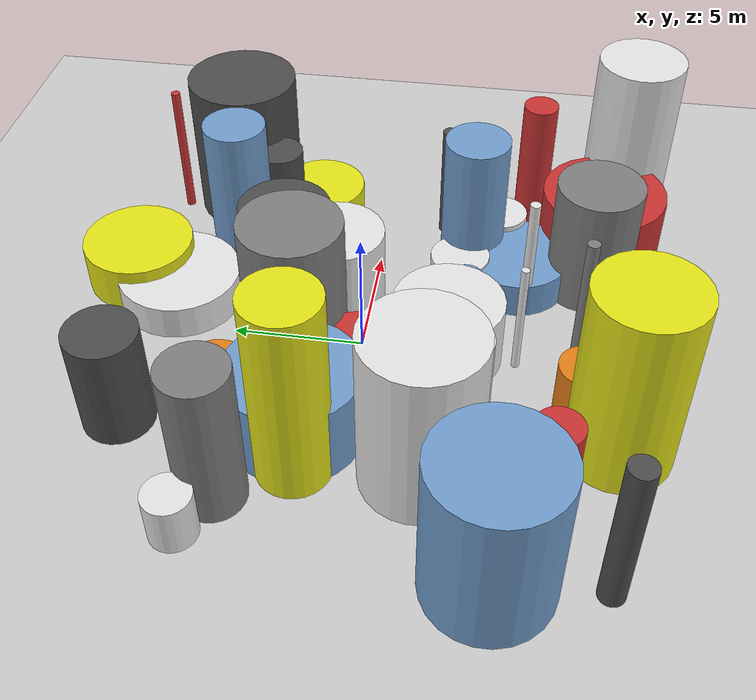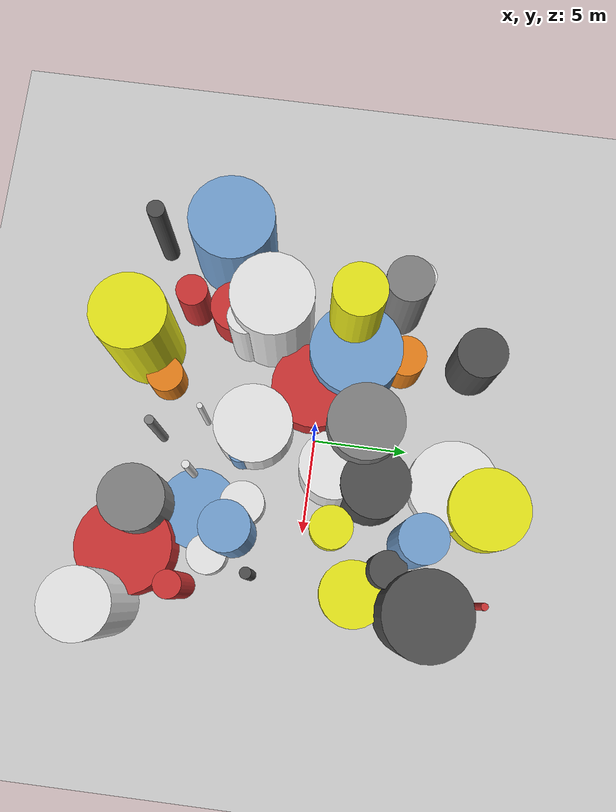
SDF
<?xml version='1.0'?>
<sdf version='1.6'>
  <world name='default'>
    <!-- Sun light -->
    <light name='sun' type='directional'>
      <cast_shadows>1</cast_shadows>
      <pose>0 0 10 0 0 0</pose>
      <diffuse>0.8 0.8 0.8 1</diffuse>
      <specular>0.2 0.2 0.2 1</specular>
      <attenuation>
        <range>1000</range>
        <constant>0.9</constant>
        <linear>0.01</linear>
        <quadratic>0.001</quadratic>
      </attenuation>
      <direction>-0.5 0.1 -0.9</direction>
    </light>

    <!-- Ground plane -->
    <model name='ground_plane'>
      <static>1</static>
      <link name='link'>
        <collision name='collision'>
          <geometry>
            <plane>
              <normal>0 0 1</normal>
              <size>100 100</size>
            </plane>
          </geometry>
          <surface>
            <contact>
              <collide_bitmask>65535</collide_bitmask>
              <ode/>
            </contact>
            <friction>
              <ode>
                <mu>100</mu>
                <mu2>50</mu2>
              </ode>
              <torsional><ode/></torsional>
            </friction>
            <bounce/>
          </surface>
          <max_contacts>10</max_contacts>
        </collision>
        <visual name='visual'>
          <cast_shadows>0</cast_shadows>
          <geometry>
            <plane>
              <normal>0 0 1</normal>
              <size>100 100</size>
            </plane>
          </geometry>
          <material>
            <script>
              <uri>file://media/materials/scripts/gazebo.material</uri>
              <n>Gazebo/Grey</n>
            </script>
          </material>
        </visual>
      </link>
    </model>

    <!-- Environment -->
    <magnetic_field>6e-06 2.3e-05 -4.2e-05</magnetic_field>
    <atmosphere type='adiabatic'/>
    <physics name='default_physics' default='0' type='ode'>
      <gravity>0 0 -9.8</gravity>
      <max_step_size>0.004</max_step_size>
      <real_time_factor>1</real_time_factor>
      <real_time_update_rate>250</real_time_update_rate>
    </physics>
    <scene>
      <ambient>0.4 0.4 0.4 1</ambient>
      <background>0.7 0.7 0.7 1</background>
      <shadows>1</shadows>
    </scene>
    <wind/>
    <spherical_coordinates>
      <surface_model>EARTH_WGS84</surface_model>
      <latitude_deg>0</latitude_deg>
      <longitude_deg>0</longitude_deg>
      <elevation>0</elevation>
      <heading_deg>0</heading_deg>
    </spherical_coordinates>

    <!-- ============ OBSTACLES (41) ============ -->
    <model name='obs_00'>
      <static>1</static>
      <link name='link'>
        <visual name='visual'>
          <geometry>
            <cylinder>
              <radius>0.2033</radius>
              <length>5.2297</length>
            </cylinder>
          </geometry>
          <material>
            <script>
              <n>Gazebo/White</n>
              <uri>file://media/materials/scripts/gazebo.material</uri>
            </script>
            <ambient>0.9 0.9 0.9 1</ambient>
          </material>
        </visual>
        <collision name='collision'>
          <geometry>
            <cylinder>
              <radius>0.2033</radius>
              <length>5.2297</length>
            </cylinder>
          </geometry>
          <max_contacts>10</max_contacts>
          <surface>
            <contact><ode/></contact>
            <bounce/>
            <friction>
              <ode><mu>1</mu><mu2>1</mu2></ode>
              <torsional><ode/></torsional>
            </friction>
          </surface>
        </collision>
      </link>
      <pose>2.7827 -6.0167 2.6148 0 0 2.5821</pose>
    </model>

    <model name='obs_01'>
      <static>1</static>
      <link name='link'>
        <visual name='visual'>
          <geometry>
            <cylinder>
              <radius>1.2286</radius>
              <length>6.1589</length>
            </cylinder>
          </geometry>
          <material>
            <script>
              <n>Gazebo/Blue</n>
              <uri>file://media/materials/scripts/gazebo.material</uri>
            </script>
            <ambient>0.447 0.624 0.812 1</ambient>
          </material>
        </visual>
        <collision name='collision'>
          <geometry>
            <cylinder>
              <radius>1.2286</radius>
              <length>6.1589</length>
            </cylinder>
          </geometry>
          <max_contacts>10</max_contacts>
          <surface>
            <contact><ode/></contact>
            <bounce/>
            <friction>
              <ode><mu>1</mu><mu2>1</mu2></ode>
              <torsional><ode/></torsional>
            </friction>
          </surface>
        </collision>
      </link>
      <pose>4.9687 5.7534 3.0794 0 0 0.5555</pose>
    </model>

    <model name='obs_02'>
      <static>1</static>
      <link name='link'>
        <visual name='visual'>
          <geometry>
            <cylinder>
              <radius>0.8533</radius>
              <length>1.9529</length>
            </cylinder>
          </geometry>
          <material>
            <script>
              <n>Gazebo/White</n>
              <uri>file://media/materials/scripts/gazebo.material</uri>
            </script>
            <ambient>0.9 0.9 0.9 1</ambient>
          </material>
        </visual>
        <collision name='collision'>
          <geometry>
            <cylinder>
              <radius>0.8533</radius>
              <length>1.9529</length>
            </cylinder>
          </geometry>
          <max_contacts>10</max_contacts>
          <surface>
            <contact><ode/></contact>
            <bounce/>
            <friction>
              <ode><mu>1</mu><mu2>1</mu2></ode>
              <torsional><ode/></torsional>
            </friction>
          </surface>
        </collision>
      </link>
      <pose>-9.3894 4.6577 0.9765 0 0 1.5362</pose>
    </model>

    <model name='obs_03'>
      <static>1</static>
      <link name='link'>
        <visual name='visual'>
          <geometry>
            <cylinder>
              <radius>1.7557</radius>
              <length>1.5723</length>
            </cylinder>
          </geometry>
          <material>
            <script>
              <n>Gazebo/Yellow</n>
              <uri>file://media/materials/scripts/gazebo.material</uri>
            </script>
            <ambient>0.9 0.9 0.1 1</ambient>
          </material>
        </visual>
        <collision name='collision'>
          <geometry>
            <cylinder>
              <radius>1.7557</radius>
              <length>1.5723</length>
            </cylinder>
          </geometry>
          <max_contacts>10</max_contacts>
          <surface>
            <contact><ode/></contact>
            <bounce/>
            <friction>
              <ode><mu>1</mu><mu2>1</mu2></ode>
              <torsional><ode/></torsional>
            </friction>
          </surface>
        </collision>
      </link>
      <pose>7.8879 2.9572 0.7861 0 0 2.3073</pose>
    </model>

    <model name='obs_04'>
      <static>1</static>
      <link name='link'>
        <visual name='visual'>
          <geometry>
            <cylinder>
              <radius>2.0811</radius>
              <length>2.7573</length>
            </cylinder>
          </geometry>
          <material>
            <script>
              <n>Gazebo/White</n>
              <uri>file://media/materials/scripts/gazebo.material</uri>
            </script>
            <ambient>0.9 0.9 0.9 1</ambient>
          </material>
        </visual>
        <collision name='collision'>
          <geometry>
            <cylinder>
              <radius>2.0811</radius>
              <length>2.7573</length>
            </cylinder>
          </geometry>
          <max_contacts>10</max_contacts>
          <surface>
            <contact><ode/></contact>
            <bounce/>
            <friction>
              <ode><mu>1</mu><mu2>1</mu2></ode>
              <torsional><ode/></torsional>
            </friction>
          </surface>
        </collision>
      </link>
      <pose>-0.1002 -3.2435 1.3787 0 0 1.9395</pose>
    </model>

    <model name='obs_05'>
      <static>1</static>
      <link name='link'>
        <visual name='visual'>
          <geometry>
            <cylinder>
              <radius>2.1134</radius>
              <length>1.4593</length>
            </cylinder>
          </geometry>
          <material>
            <script>
              <n>Gazebo/Blue</n>
              <uri>file://media/materials/scripts/gazebo.material</uri>
            </script>
            <ambient>0.447 0.624 0.812 1</ambient>
          </material>
        </visual>
        <collision name='collision'>
          <geometry>
            <cylinder>
              <radius>2.1134</radius>
              <length>1.4593</length>
            </cylinder>
          </geometry>
          <max_contacts>10</max_contacts>
          <surface>
            <contact><ode/></contact>
            <bounce/>
            <friction>
              <ode><mu>1</mu><mu2>1</mu2></ode>
              <torsional><ode/></torsional>
            </friction>
          </surface>
        </collision>
      </link>
      <pose>4.5429 -5.5545 0.7297 0 0 1.1145</pose>
    </model>

    <model name='obs_06'>
      <static>1</static>
      <link name='link'>
        <visual name='visual'>
          <geometry>
            <cylinder>
              <radius>0.9795</radius>
              <length>2.2826</length>
            </cylinder>
          </geometry>
          <material>
            <script>
              <n>Gazebo/Orange</n>
              <uri>file://media/materials/scripts/gazebo.material</uri>
            </script>
            <ambient>0.9 0.5 0.1 1</ambient>
          </material>
        </visual>
        <collision name='collision'>
          <geometry>
            <cylinder>
              <radius>0.9795</radius>
              <length>2.2826</length>
            </cylinder>
          </geometry>
          <max_contacts>10</max_contacts>
          <surface>
            <contact><ode/></contact>
            <bounce/>
            <friction>
              <ode><mu>1</mu><mu2>1</mu2></ode>
              <torsional><ode/></torsional>
            </friction>
          </surface>
        </collision>
      </link>
      <pose>-2.2203 -8.2411 1.1413 0 0 1.3497</pose>
    </model>

    <model name='obs_07'>
      <static>1</static>
      <link name='link'>
        <visual name='visual'>
          <geometry>
            <cylinder>
              <radius>1.7584</radius>
              <length>4.0465</length>
            </cylinder>
          </geometry>
          <material>
            <script>
              <n>Gazebo/White</n>
              <uri>file://media/materials/scripts/gazebo.material</uri>
            </script>
            <ambient>0.9 0.9 0.9 1</ambient>
          </material>
        </visual>
        <collision name='collision'>
          <geometry>
            <cylinder>
              <radius>1.7584</radius>
              <length>4.0465</length>
            </cylinder>
          </geometry>
          <max_contacts>10</max_contacts>
          <surface>
            <contact><ode/></contact>
            <bounce/>
            <friction>
              <ode><mu>1</mu><mu2>1</mu2></ode>
              <torsional><ode/></torsional>
            </friction>
          </surface>
        </collision>
      </link>
      <pose>1.7192 1.1507 2.0233 0 0 3.0694</pose>
    </model>

    <model name='obs_08'>
      <static>1</static>
      <link name='link'>
        <visual name='visual'>
          <geometry>
            <cylinder>
              <radius>1.9256</radius>
              <length>5.8558</length>
            </cylinder>
          </geometry>
          <material>
            <script>
              <n>Gazebo/Grey</n>
              <uri>file://media/materials/scripts/gazebo.material</uri>
            </script>
            <ambient>0.5 0.5 0.5 1</ambient>
          </material>
        </visual>
        <collision name='collision'>
          <geometry>
            <cylinder>
              <radius>1.9256</radius>
              <length>5.8558</length>
            </cylinder>
          </geometry>
          <max_contacts>10</max_contacts>
          <surface>
            <contact><ode/></contact>
            <bounce/>
            <friction>
              <ode><mu>1</mu><mu2>1</mu2></ode>
              <torsional><ode/></torsional>
            </friction>
          </surface>
        </collision>
      </link>
      <pose>-0.3339 2.4494 2.9279 0 0 2.5696</pose>
    </model>

    <model name='obs_09'>
      <static>1</static>
      <link name='link'>
        <visual name='visual'>
          <geometry>
            <cylinder>
              <radius>1.2054</radius>
              <length>5.9635</length>
            </cylinder>
          </geometry>
          <material>
            <script>
              <n>Gazebo/Grey</n>
              <uri>file://media/materials/scripts/gazebo.material</uri>
            </script>
            <ambient>0.5 0.5 0.5 1</ambient>
          </material>
        </visual>
        <collision name='collision'>
          <geometry>
            <cylinder>
              <radius>1.2054</radius>
              <length>5.9635</length>
            </cylinder>
          </geometry>
          <max_contacts>10</max_contacts>
          <surface>
            <contact><ode/></contact>
            <bounce/>
            <friction>
              <ode><mu>1</mu><mu2>1</mu2></ode>
              <torsional><ode/></torsional>
            </friction>
          </surface>
        </collision>
      </link>
      <pose>-7.7425 3.7994 2.9818 0 0 0.8746</pose>
    </model>

    <model name='obs_10'>
      <static>1</static>
      <link name='link'>
        <visual name='visual'>
          <geometry>
            <cylinder>
              <radius>0.6286</radius>
              <length>2.7375</length>
            </cylinder>
          </geometry>
          <material>
            <script>
              <n>Gazebo/Blue</n>
              <uri>file://media/materials/scripts/gazebo.material</uri>
            </script>
            <ambient>0.447 0.624 0.812 1</ambient>
          </material>
        </visual>
        <collision name='collision'>
          <geometry>
            <cylinder>
              <radius>0.6286</radius>
              <length>2.7375</length>
            </cylinder>
          </geometry>
          <max_contacts>10</max_contacts>
          <surface>
            <contact><ode/></contact>
            <bounce/>
            <friction>
              <ode><mu>1</mu><mu2>1</mu2></ode>
              <torsional><ode/></torsional>
            </friction>
          </surface>
        </collision>
      </link>
      <pose>1.3999 -3.7194 1.3687 0 0 0.9767</pose>
    </model>

    <model name='obs_11'>
      <static>1</static>
      <link name='link'>
        <visual name='visual'>
          <geometry>
            <cylinder>
              <radius>1.1571</radius>
              <length>1.6709</length>
            </cylinder>
          </geometry>
          <material>
            <script>
              <n>Gazebo/Yellow</n>
              <uri>file://media/materials/scripts/gazebo.material</uri>
            </script>
            <ambient>0.9 0.9 0.1 1</ambient>
          </material>
        </visual>
        <collision name='collision'>
          <geometry>
            <cylinder>
              <radius>1.1571</radius>
              <length>1.6709</length>
            </cylinder>
          </geometry>
          <max_contacts>10</max_contacts>
          <surface>
            <contact><ode/></contact>
            <bounce/>
            <friction>
              <ode><mu>1</mu><mu2>1</mu2></ode>
              <torsional><ode/></torsional>
            </friction>
          </surface>
        </collision>
      </link>
      <pose>4.6305 1.4573 0.8354 0 0 2.7314</pose>
    </model>

    <model name='obs_12'>
      <static>1</static>
      <link name='link'>
        <visual name='visual'>
          <geometry>
            <cylinder>
              <radius>0.9519</radius>
              <length>4.0551</length>
            </cylinder>
          </geometry>
          <material>
            <script>
              <n>Gazebo/DarkGrey</n>
              <uri>file://media/materials/scripts/gazebo.material</uri>
            </script>
            <ambient>0.3 0.3 0.3 1</ambient>
          </material>
        </visual>
        <collision name='collision'>
          <geometry>
            <cylinder>
              <radius>0.9519</radius>
              <length>4.0551</length>
            </cylinder>
          </geometry>
          <max_contacts>10</max_contacts>
          <surface>
            <contact><ode/></contact>
            <bounce/>
            <friction>
              <ode><mu>1</mu><mu2>1</mu2></ode>
              <torsional><ode/></torsional>
            </friction>
          </surface>
        </collision>
      </link>
      <pose>6.5163 4.4215 2.0276 0 0 0.6336</pose>
    </model>

    <model name='obs_13'>
      <static>1</static>
      <link name='link'>
        <visual name='visual'>
          <geometry>
            <cylinder>
              <radius>2.2037</radius>
              <length>6.1408</length>
            </cylinder>
          </geometry>
          <material>
            <script>
              <n>Gazebo/DarkGrey</n>
              <uri>file://media/materials/scripts/gazebo.material</uri>
            </script>
            <ambient>0.3 0.3 0.3 1</ambient>
          </material>
        </visual>
        <collision name='collision'>
          <geometry>
            <cylinder>
              <radius>2.2037</radius>
              <length>6.1408</length>
            </cylinder>
          </geometry>
          <max_contacts>10</max_contacts>
          <surface>
            <contact><ode/></contact>
            <bounce/>
            <friction>
              <ode><mu>1</mu><mu2>1</mu2></ode>
              <torsional><ode/></torsional>
            </friction>
          </surface>
        </collision>
      </link>
      <pose>8.4772 6.3111 3.0704 0 0 0.7024</pose>
    </model>

    <model name='obs_14'>
      <static>1</static>
      <link name='link'>
        <visual name='visual'>
          <geometry>
            <cylinder>
              <radius>2.4550</radius>
              <length>3.1119</length>
            </cylinder>
          </geometry>
          <material>
            <script>
              <n>Gazebo/Blue</n>
              <uri>file://media/materials/scripts/gazebo.material</uri>
            </script>
            <ambient>0.447 0.624 0.812 1</ambient>
          </material>
        </visual>
        <collision name='collision'>
          <geometry>
            <cylinder>
              <radius>2.4550</radius>
              <length>3.1119</length>
            </cylinder>
          </geometry>
          <max_contacts>10</max_contacts>
          <surface>
            <contact><ode/></contact>
            <bounce/>
            <friction>
              <ode><mu>1</mu><mu2>1</mu2></ode>
              <torsional><ode/></torsional>
            </friction>
          </surface>
        </collision>
      </link>
      <pose>-4.6201 1.6112 1.5560 0 0 1.0625</pose>
    </model>

    <model name='obs_15'>
      <static>1</static>
      <link name='link'>
        <visual name='visual'>
          <geometry>
            <cylinder>
              <radius>1.7726</radius>
              <length>4.4105</length>
            </cylinder>
          </geometry>
          <material>
            <script>
              <n>Gazebo/DarkGrey</n>
              <uri>file://media/materials/scripts/gazebo.material</uri>
            </script>
            <ambient>0.3 0.3 0.3 1</ambient>
          </material>
        </visual>
        <collision name='collision'>
          <geometry>
            <cylinder>
              <radius>1.7726</radius>
              <length>4.4105</length>
            </cylinder>
          </geometry>
          <max_contacts>10</max_contacts>
          <surface>
            <contact><ode/></contact>
            <bounce/>
            <friction>
              <ode><mu>1</mu><mu2>1</mu2></ode>
              <torsional><ode/></torsional>
            </friction>
          </surface>
        </collision>
      </link>
      <pose>2.4301 3.3279 2.2052 0 0 0.1686</pose>
    </model>

    <model name='obs_16'>
      <static>1</static>
      <link name='link'>
        <visual name='visual'>
          <geometry>
            <cylinder>
              <radius>1.3804</radius>
              <length>2.6094</length>
            </cylinder>
          </geometry>
          <material>
            <script>
              <n>Gazebo/Red</n>
              <uri>file://media/materials/scripts/gazebo.material</uri>
            </script>
            <ambient>0.8 0.2 0.2 1</ambient>
          </material>
        </visual>
        <collision name='collision'>
          <geometry>
            <cylinder>
              <radius>1.3804</radius>
              <length>2.6094</length>
            </cylinder>
          </geometry>
          <max_contacts>10</max_contacts>
          <surface>
            <contact><ode/></contact>
            <bounce/>
            <friction>
              <ode><mu>1</mu><mu2>1</mu2></ode>
              <torsional><ode/></torsional>
            </friction>
          </surface>
        </collision>
      </link>
      <pose>-6.2556 -4.9776 1.3047 0 0 2.9527</pose>
    </model>

    <model name='obs_17'>
      <static>1</static>
      <link name='link'>
        <visual name='visual'>
          <geometry>
            <cylinder>
              <radius>0.6905</radius>
              <length>5.8380</length>
            </cylinder>
          </geometry>
          <material>
            <script>
              <n>Gazebo/Red</n>
              <uri>file://media/materials/scripts/gazebo.material</uri>
            </script>
            <ambient>0.8 0.2 0.2 1</ambient>
          </material>
        </visual>
        <collision name='collision'>
          <geometry>
            <cylinder>
              <radius>0.6905</radius>
              <length>5.8380</length>
            </cylinder>
          </geometry>
          <max_contacts>10</max_contacts>
          <surface>
            <contact><ode/></contact>
            <bounce/>
            <friction>
              <ode><mu>1</mu><mu2>1</mu2></ode>
              <torsional><ode/></torsional>
            </friction>
          </surface>
        </collision>
      </link>
      <pose>8.5715 -5.9562 2.9190 0 0 2.4214</pose>
    </model>

    <model name='obs_18'>
      <static>1</static>
      <link name='link'>
        <visual name='visual'>
          <geometry>
            <cylinder>
              <radius>1.0816</radius>
              <length>3.0177</length>
            </cylinder>
          </geometry>
          <material>
            <script>
              <n>Gazebo/Orange</n>
              <uri>file://media/materials/scripts/gazebo.material</uri>
            </script>
            <ambient>0.9 0.5 0.1 1</ambient>
          </material>
        </visual>
        <collision name='collision'>
          <geometry>
            <cylinder>
              <radius>1.0816</radius>
              <length>3.0177</length>
            </cylinder>
          </geometry>
          <max_contacts>10</max_contacts>
          <surface>
            <contact><ode/></contact>
            <bounce/>
            <friction>
              <ode><mu>1</mu><mu2>1</mu2></ode>
              <torsional><ode/></torsional>
            </friction>
          </surface>
        </collision>
      </link>
      <pose>-4.5833 4.2363 1.5088 0 0 1.6600</pose>
    </model>

    <model name='obs_19'>
      <static>1</static>
      <link name='link'>
        <visual name='visual'>
          <geometry>
            <cylinder>
              <radius>0.2409</radius>
              <length>5.2235</length>
            </cylinder>
          </geometry>
          <material>
            <script>
              <n>Gazebo/Grey</n>
              <uri>file://media/materials/scripts/gazebo.material</uri>
            </script>
            <ambient>0.5 0.5 0.5 1</ambient>
          </material>
        </visual>
        <collision name='collision'>
          <geometry>
            <cylinder>
              <radius>0.2409</radius>
              <length>5.2235</length>
            </cylinder>
          </geometry>
          <max_contacts>10</max_contacts>
          <surface>
            <contact><ode/></contact>
            <bounce/>
            <friction>
              <ode><mu>1</mu><mu2>1</mu2></ode>
              <torsional><ode/></torsional>
            </friction>
          </surface>
        </collision>
      </link>
      <pose>0.8351 -8.1185 2.6117 0 0 0.3278</pose>
    </model>

    <model name='obs_20'>
      <static>1</static>
      <link name='link'>
        <visual name='visual'>
          <geometry>
            <cylinder>
              <radius>1.0454</radius>
              <length>1.7007</length>
            </cylinder>
          </geometry>
          <material>
            <script>
              <n>Gazebo/White</n>
              <uri>file://media/materials/scripts/gazebo.material</uri>
            </script>
            <ambient>0.9 0.9 0.9 1</ambient>
          </material>
        </visual>
        <collision name='collision'>
          <geometry>
            <cylinder>
              <radius>1.0454</radius>
              <length>1.7007</length>
            </cylinder>
          </geometry>
          <max_contacts>10</max_contacts>
          <surface>
            <contact><ode/></contact>
            <bounce/>
            <friction>
              <ode><mu>1</mu><mu2>1</mu2></ode>
              <torsional><ode/></torsional>
            </friction>
          </surface>
        </collision>
      </link>
      <pose>6.8160 -4.7697 0.8503 0 0 1.3434</pose>
    </model>

    <model name='obs_21'>
      <static>1</static>
      <link name='link'>
        <visual name='visual'>
          <geometry>
            <cylinder>
              <radius>1.6716</radius>
              <length>4.9924</length>
            </cylinder>
          </geometry>
          <material>
            <script>
              <n>Gazebo/Grey</n>
              <uri>file://media/materials/scripts/gazebo.material</uri>
            </script>
            <ambient>0.5 0.5 0.5 1</ambient>
          </material>
        </visual>
        <collision name='collision'>
          <geometry>
            <cylinder>
              <radius>1.6716</radius>
              <length>4.9924</length>
            </cylinder>
          </geometry>
          <max_contacts>10</max_contacts>
          <surface>
            <contact><ode/></contact>
            <bounce/>
            <friction>
              <ode><mu>1</mu><mu2>1</mu2></ode>
              <torsional><ode/></torsional>
            </friction>
          </surface>
        </collision>
      </link>
      <pose>4.6717 -8.4492 2.4962 0 0 0.6349</pose>
    </model>

    <model name='obs_22'>
      <static>1</static>
      <link name='link'>
        <visual name='visual'>
          <geometry>
            <cylinder>
              <radius>0.1814</radius>
              <length>5.6036</length>
            </cylinder>
          </geometry>
          <material>
            <script>
              <n>Gazebo/Red</n>
              <uri>file://media/materials/scripts/gazebo.material</uri>
            </script>
            <ambient>0.8 0.2 0.2 1</ambient>
          </material>
        </visual>
        <collision name='collision'>
          <geometry>
            <cylinder>
              <radius>0.1814</radius>
              <length>5.6036</length>
            </cylinder>
          </geometry>
          <max_contacts>10</max_contacts>
          <surface>
            <contact><ode/></contact>
            <bounce/>
            <friction>
              <ode><mu>1</mu><mu2>1</mu2></ode>
              <torsional><ode/></torsional>
            </friction>
          </surface>
        </collision>
      </link>
      <pose>7.7178 8.9567 2.8018 0 0 0.2456</pose>
    </model>

    <model name='obs_23'>
      <static>1</static>
      <link name='link'>
        <visual name='visual'>
          <geometry>
            <cylinder>
              <radius>0.1508</radius>
              <length>4.6852</length>
            </cylinder>
          </geometry>
          <material>
            <script>
              <n>Gazebo/White</n>
              <uri>file://media/materials/scripts/gazebo.material</uri>
            </script>
            <ambient>0.9 0.9 0.9 1</ambient>
          </material>
        </visual>
        <collision name='collision'>
          <geometry>
            <cylinder>
              <radius>0.1508</radius>
              <length>4.6852</length>
            </cylinder>
          </geometry>
          <max_contacts>10</max_contacts>
          <surface>
            <contact><ode/></contact>
            <bounce/>
            <friction>
              <ode><mu>1</mu><mu2>1</mu2></ode>
              <torsional><ode/></torsional>
            </friction>
          </surface>
        </collision>
      </link>
      <pose>-0.2796 -5.8419 2.3426 0 0 2.1757</pose>
    </model>

    <model name='obs_24'>
      <static>1</static>
      <link name='link'>
        <visual name='visual'>
          <geometry>
            <cylinder>
              <radius>1.9137</radius>
              <length>7.4444</length>
            </cylinder>
          </geometry>
          <material>
            <script>
              <n>Gazebo/Yellow</n>
              <uri>file://media/materials/scripts/gazebo.material</uri>
            </script>
            <ambient>0.9 0.9 0.1 1</ambient>
          </material>
        </visual>
        <collision name='collision'>
          <geometry>
            <cylinder>
              <radius>1.9137</radius>
              <length>7.4444</length>
            </cylinder>
          </geometry>
          <max_contacts>10</max_contacts>
          <surface>
            <contact><ode/></contact>
            <bounce/>
            <friction>
              <ode><mu>1</mu><mu2>1</mu2></ode>
              <torsional><ode/></torsional>
            </friction>
          </surface>
        </collision>
      </link>
      <pose>-3.9145 -9.5800 3.7222 0 0 0.0213</pose>
    </model>

    <model name='obs_25'>
      <static>1</static>
      <link name='link'>
        <visual name='visual'>
          <geometry>
            <cylinder>
              <radius>2.4046</radius>
              <length>1.3927</length>
            </cylinder>
          </geometry>
          <material>
            <script>
              <n>Gazebo/White</n>
              <uri>file://media/materials/scripts/gazebo.material</uri>
            </script>
            <ambient>0.9 0.9 0.9 1</ambient>
          </material>
        </visual>
        <collision name='collision'>
          <geometry>
            <cylinder>
              <radius>2.4046</radius>
              <length>1.3927</length>
            </cylinder>
          </geometry>
          <max_contacts>10</max_contacts>
          <surface>
            <contact><ode/></contact>
            <bounce/>
            <friction>
              <ode><mu>1</mu><mu2>1</mu2></ode>
              <torsional><ode/></torsional>
            </friction>
          </surface>
        </collision>
      </link>
      <pose>1.6556 7.5708 0.6963 0 0 2.6227</pose>
    </model>

    <model name='obs_26'>
      <static>1</static>
      <link name='link'>
        <visual name='visual'>
          <geometry>
            <cylinder>
              <radius>1.2680</radius>
              <length>5.9604</length>
            </cylinder>
          </geometry>
          <material>
            <script>
              <n>Gazebo/Blue</n>
              <uri>file://media/materials/scripts/gazebo.material</uri>
            </script>
            <ambient>0.447 0.624 0.812 1</ambient>
          </material>
        </visual>
        <collision name='collision'>
          <geometry>
            <cylinder>
              <radius>1.2680</radius>
              <length>5.9604</length>
            </cylinder>
          </geometry>
          <max_contacts>10</max_contacts>
          <surface>
            <contact><ode/></contact>
            <bounce/>
            <friction>
              <ode><mu>1</mu><mu2>1</mu2></ode>
              <torsional><ode/></torsional>
            </friction>
          </surface>
        </collision>
      </link>
      <pose>5.5431 -3.6691 2.9802 0 0 1.7142</pose>
    </model>

    <model name='obs_27'>
      <static>1</static>
      <link name='link'>
        <visual name='visual'>
          <geometry>
            <cylinder>
              <radius>0.9086</radius>
              <length>5.5486</length>
            </cylinder>
          </geometry>
          <material>
            <script>
              <n>Gazebo/White</n>
              <uri>file://media/materials/scripts/gazebo.material</uri>
            </script>
            <ambient>0.9 0.9 0.9 1</ambient>
          </material>
        </visual>
        <collision name='collision'>
          <geometry>
            <cylinder>
              <radius>0.9086</radius>
              <length>5.5486</length>
            </cylinder>
          </geometry>
          <max_contacts>10</max_contacts>
          <surface>
            <contact><ode/></contact>
            <bounce/>
            <friction>
              <ode><mu>1</mu><mu2>1</mu2></ode>
              <torsional><ode/></torsional>
            </friction>
          </surface>
        </collision>
      </link>
      <pose>-4.8803 -4.1560 2.7743 0 0 1.9553</pose>
    </model>

    <model name='obs_28'>
      <static>1</static>
      <link name='link'>
        <visual name='visual'>
          <geometry>
            <cylinder>
              <radius>0.4669</radius>
              <length>6.1504</length>
            </cylinder>
          </geometry>
          <material>
            <script>
              <n>Gazebo/DarkGrey</n>
              <uri>file://media/materials/scripts/gazebo.material</uri>
            </script>
            <ambient>0.3 0.3 0.3 1</ambient>
          </material>
        </visual>
        <collision name='collision'>
          <geometry>
            <cylinder>
              <radius>0.4669</radius>
              <length>6.1504</length>
            </cylinder>
          </geometry>
          <max_contacts>10</max_contacts>
          <surface>
            <contact><ode/></contact>
            <bounce/>
            <friction>
              <ode><mu>1</mu><mu2>1</mu2></ode>
              <torsional><ode/></torsional>
            </friction>
          </surface>
        </collision>
      </link>
      <pose>-9.6818 -9.3150 3.0752 0 0 1.0748</pose>
    </model>

    <model name='obs_29'>
      <static>1</static>
      <link name='link'>
        <visual name='visual'>
          <geometry>
            <cylinder>
              <radius>0.8430</radius>
              <length>3.7923</length>
            </cylinder>
          </geometry>
          <material>
            <script>
              <n>Gazebo/Red</n>
              <uri>file://media/materials/scripts/gazebo.material</uri>
            </script>
            <ambient>0.8 0.2 0.2 1</ambient>
          </material>
        </visual>
        <collision name='collision'>
          <geometry>
            <cylinder>
              <radius>0.8430</radius>
              <length>3.7923</length>
            </cylinder>
          </geometry>
          <max_contacts>10</max_contacts>
          <surface>
            <contact><ode/></contact>
            <bounce/>
            <friction>
              <ode><mu>1</mu><mu2>1</mu2></ode>
              <torsional><ode/></torsional>
            </friction>
          </surface>
        </collision>
      </link>
      <pose>-6.4658 -7.2728 1.8961 0 0 2.7336</pose>
    </model>

    <model name='obs_30'>
      <static>1</static>
      <link name='link'>
        <visual name='visual'>
          <geometry>
            <cylinder>
              <radius>2.1782</radius>
              <length>1.9093</length>
            </cylinder>
          </geometry>
          <material>
            <script>
              <n>Gazebo/Yellow</n>
              <uri>file://media/materials/scripts/gazebo.material</uri>
            </script>
            <ambient>0.9 0.9 0.1 1</ambient>
          </material>
        </visual>
        <collision name='collision'>
          <geometry>
            <cylinder>
              <radius>2.1782</radius>
              <length>1.9093</length>
            </cylinder>
          </geometry>
          <max_contacts>10</max_contacts>
          <surface>
            <contact><ode/></contact>
            <bounce/>
            <friction>
              <ode><mu>1</mu><mu2>1</mu2></ode>
              <torsional><ode/></torsional>
            </friction>
          </surface>
        </collision>
      </link>
      <pose>2.6939 9.5016 0.9546 0 0 0.7060</pose>
    </model>

    <model name='obs_31'>
      <static>1</static>
      <link name='link'>
        <visual name='visual'>
          <geometry>
            <cylinder>
              <radius>2.4768</radius>
              <length>3.0287</length>
            </cylinder>
          </geometry>
          <material>
            <script>
              <n>Gazebo/Red</n>
              <uri>file://media/materials/scripts/gazebo.material</uri>
            </script>
            <ambient>0.8 0.2 0.2 1</ambient>
          </material>
        </visual>
        <collision name='collision'>
          <geometry>
            <cylinder>
              <radius>2.4768</radius>
              <length>3.0287</length>
            </cylinder>
          </geometry>
          <max_contacts>10</max_contacts>
          <surface>
            <contact><ode/></contact>
            <bounce/>
            <friction>
              <ode><mu>1</mu><mu2>1</mu2></ode>
              <torsional><ode/></torsional>
            </friction>
          </surface>
        </collision>
      </link>
      <pose>6.9762 -8.8362 1.5144 0 0 1.1267</pose>
    </model>

    <model name='obs_32'>
      <static>1</static>
      <link name='link'>
        <visual name='visual'>
          <geometry>
            <cylinder>
              <radius>2.1287</radius>
              <length>6.5474</length>
            </cylinder>
          </geometry>
          <material>
            <script>
              <n>Gazebo/White</n>
              <uri>file://media/materials/scripts/gazebo.material</uri>
            </script>
            <ambient>0.9 0.9 0.9 1</ambient>
          </material>
        </visual>
        <collision name='collision'>
          <geometry>
            <cylinder>
              <radius>2.1287</radius>
              <length>6.5474</length>
            </cylinder>
          </geometry>
          <max_contacts>10</max_contacts>
          <surface>
            <contact><ode/></contact>
            <bounce/>
            <friction>
              <ode><mu>1</mu><mu2>1</mu2></ode>
              <torsional><ode/></torsional>
            </friction>
          </surface>
        </collision>
      </link>
      <pose>-5.9287 -2.8968 3.2737 0 0 1.4984</pose>
    </model>

    <model name='obs_33'>
      <static>1</static>
      <link name='link'>
        <visual name='visual'>
          <geometry>
            <cylinder>
              <radius>1.7278</radius>
              <length>7.4244</length>
            </cylinder>
          </geometry>
          <material>
            <script>
              <n>Gazebo/White</n>
              <uri>file://media/materials/scripts/gazebo.material</uri>
            </script>
            <ambient>0.9 0.9 0.9 1</ambient>
          </material>
        </visual>
        <collision name='collision'>
          <geometry>
            <cylinder>
              <radius>1.7278</radius>
              <length>7.4244</length>
            </cylinder>
          </geometry>
          <max_contacts>10</max_contacts>
          <surface>
            <contact><ode/></contact>
            <bounce/>
            <friction>
              <ode><mu>1</mu><mu2>1</mu2></ode>
              <torsional><ode/></torsional>
            </friction>
          </surface>
        </collision>
      </link>
      <pose>9.9638 -9.7711 3.7122 0 0 2.2367</pose>
    </model>

    <model name='obs_34'>
      <static>1</static>
      <link name='link'>
        <visual name='visual'>
          <geometry>
            <cylinder>
              <radius>1.1697</radius>
              <length>1.5590</length>
            </cylinder>
          </geometry>
          <material>
            <script>
              <n>Gazebo/White</n>
              <uri>file://media/materials/scripts/gazebo.material</uri>
            </script>
            <ambient>0.9 0.9 0.9 1</ambient>
          </material>
        </visual>
        <collision name='collision'>
          <geometry>
            <cylinder>
              <radius>1.1697</radius>
              <length>1.5590</length>
            </cylinder>
          </geometry>
          <max_contacts>10</max_contacts>
          <surface>
            <contact><ode/></contact>
            <bounce/>
            <friction>
              <ode><mu>1</mu><mu2>1</mu2></ode>
              <torsional><ode/></torsional>
            </friction>
          </surface>
        </collision>
      </link>
      <pose>3.9660 -3.3115 0.7795 0 0 3.1345</pose>
    </model>

    <model name='obs_35'>
      <static>1</static>
      <link name='link'>
        <visual name='visual'>
          <geometry>
            <cylinder>
              <radius>1.3170</radius>
              <length>4.2194</length>
            </cylinder>
          </geometry>
          <material>
            <script>
              <n>Gazebo/DarkGrey</n>
              <uri>file://media/materials/scripts/gazebo.material</uri>
            </script>
            <ambient>0.3 0.3 0.3 1</ambient>
          </material>
        </visual>
        <collision name='collision'>
          <geometry>
            <cylinder>
              <radius>1.3170</radius>
              <length>4.2194</length>
            </cylinder>
          </geometry>
          <max_contacts>10</max_contacts>
          <surface>
            <contact><ode/></contact>
            <bounce/>
            <friction>
              <ode><mu>1</mu><mu2>1</mu2></ode>
              <torsional><ode/></torsional>
            </friction>
          </surface>
        </collision>
      </link>
      <pose>-4.9096 7.9869 2.1097 0 0 1.9001</pose>
    </model>

    <model name='obs_36'>
      <static>1</static>
      <link name='link'>
        <visual name='visual'>
          <geometry>
            <cylinder>
              <radius>0.8697</radius>
              <length>5.0584</length>
            </cylinder>
          </geometry>
          <material>
            <script>
              <n>Gazebo/Grey</n>
              <uri>file://media/materials/scripts/gazebo.material</uri>
            </script>
            <ambient>0.5 0.5 0.5 1</ambient>
          </material>
        </visual>
        <collision name='collision'>
          <geometry>
            <cylinder>
              <radius>0.8697</radius>
              <length>5.0584</length>
            </cylinder>
          </geometry>
          <max_contacts>10</max_contacts>
          <surface>
            <contact><ode/></contact>
            <bounce/>
            <friction>
              <ode><mu>1</mu><mu2>1</mu2></ode>
              <torsional><ode/></torsional>
            </friction>
          </surface>
        </collision>
      </link>
      <pose>9.3456 7.5568 2.5292 0 0 2.9699</pose>
    </model>

    <model name='obs_37'>
      <static>1</static>
      <link name='link'>
        <visual name='visual'>
          <geometry>
            <cylinder>
              <radius>0.2936</radius>
              <length>4.9170</length>
            </cylinder>
          </geometry>
          <material>
            <script>
              <n>Gazebo/DarkGrey</n>
              <uri>file://media/materials/scripts/gazebo.material</uri>
            </script>
            <ambient>0.3 0.3 0.3 1</ambient>
          </material>
        </visual>
        <collision name='collision'>
          <geometry>
            <cylinder>
              <radius>0.2936</radius>
              <length>4.9170</length>
            </cylinder>
          </geometry>
          <max_contacts>10</max_contacts>
          <surface>
            <contact><ode/></contact>
            <bounce/>
            <friction>
              <ode><mu>1</mu><mu2>1</mu2></ode>
              <torsional><ode/></torsional>
            </friction>
          </surface>
        </collision>
      </link>
      <pose>7.5715 -2.4350 2.4585 0 0 1.3467</pose>
    </model>

    <model name='obs_38'>
      <static>1</static>
      <link name='link'>
        <visual name='visual'>
          <geometry>
            <cylinder>
              <radius>1.3615</radius>
              <length>7.8450</length>
            </cylinder>
          </geometry>
          <material>
            <script>
              <n>Gazebo/Yellow</n>
              <uri>file://media/materials/scripts/gazebo.material</uri>
            </script>
            <ambient>0.9 0.9 0.1 1</ambient>
          </material>
        </visual>
        <collision name='collision'>
          <geometry>
            <cylinder>
              <radius>1.3615</radius>
              <length>7.8450</length>
            </cylinder>
          </geometry>
          <max_contacts>10</max_contacts>
          <surface>
            <contact><ode/></contact>
            <bounce/>
            <friction>
              <ode><mu>1</mu><mu2>1</mu2></ode>
              <torsional><ode/></torsional>
            </friction>
          </surface>
        </collision>
      </link>
      <pose>-6.2461 1.3493 3.9225 0 0 1.5331</pose>
    </model>

    <model name='obs_39'>
      <static>1</static>
      <link name='link'>
        <visual name='visual'>
          <geometry>
            <cylinder>
              <radius>2.2325</radius>
              <length>5.8762</length>
            </cylinder>
          </geometry>
          <material>
            <script>
              <n>Gazebo/Blue</n>
              <uri>file://media/materials/scripts/gazebo.material</uri>
            </script>
            <ambient>0.447 0.624 0.812 1</ambient>
          </material>
        </visual>
        <collision name='collision'>
          <geometry>
            <cylinder>
              <radius>2.2325</radius>
              <length>5.8762</length>
            </cylinder>
          </geometry>
          <max_contacts>10</max_contacts>
          <surface>
            <contact><ode/></contact>
            <bounce/>
            <friction>
              <ode><mu>1</mu><mu2>1</mu2></ode>
              <torsional><ode/></torsional>
            </friction>
          </surface>
        </collision>
      </link>
      <pose>-9.8596 -5.5139 2.9381 0 0 0.6691</pose>
    </model>

    <model name='obs_40'>
      <static>1</static>
      <link name='link'>
        <visual name='visual'>
          <geometry>
            <cylinder>
              <radius>2.2677</radius>
              <length>2.0558</length>
            </cylinder>
          </geometry>
          <material>
            <script>
              <n>Gazebo/Red</n>
              <uri>file://media/materials/scripts/gazebo.material</uri>
            </script>
            <ambient>0.8 0.2 0.2 1</ambient>
          </material>
        </visual>
        <collision name='collision'>
          <geometry>
            <cylinder>
              <radius>2.2677</radius>
              <length>2.0558</length>
            </cylinder>
          </geometry>
          <max_contacts>10</max_contacts>
          <surface>
            <contact><ode/></contact>
            <bounce/>
            <friction>
              <ode><mu>1</mu><mu2>1</mu2></ode>
              <torsional><ode/></torsional>
            </friction>
          </surface>
        </collision>
      </link>
      <pose>-2.6264 -0.3447 1.0279 0 0 1.4687</pose>
    </model>

    <!-- GUI camera -->
    <gui fullscreen='0'>
      <camera name='user_camera'>
        <pose>-15 0 18 0 0.85 0.15</pose>
        <view_controller>orbit</view_controller>
        <projection_type>perspective</projection_type>
      </camera>
    </gui>
  </world>
</sdf>
